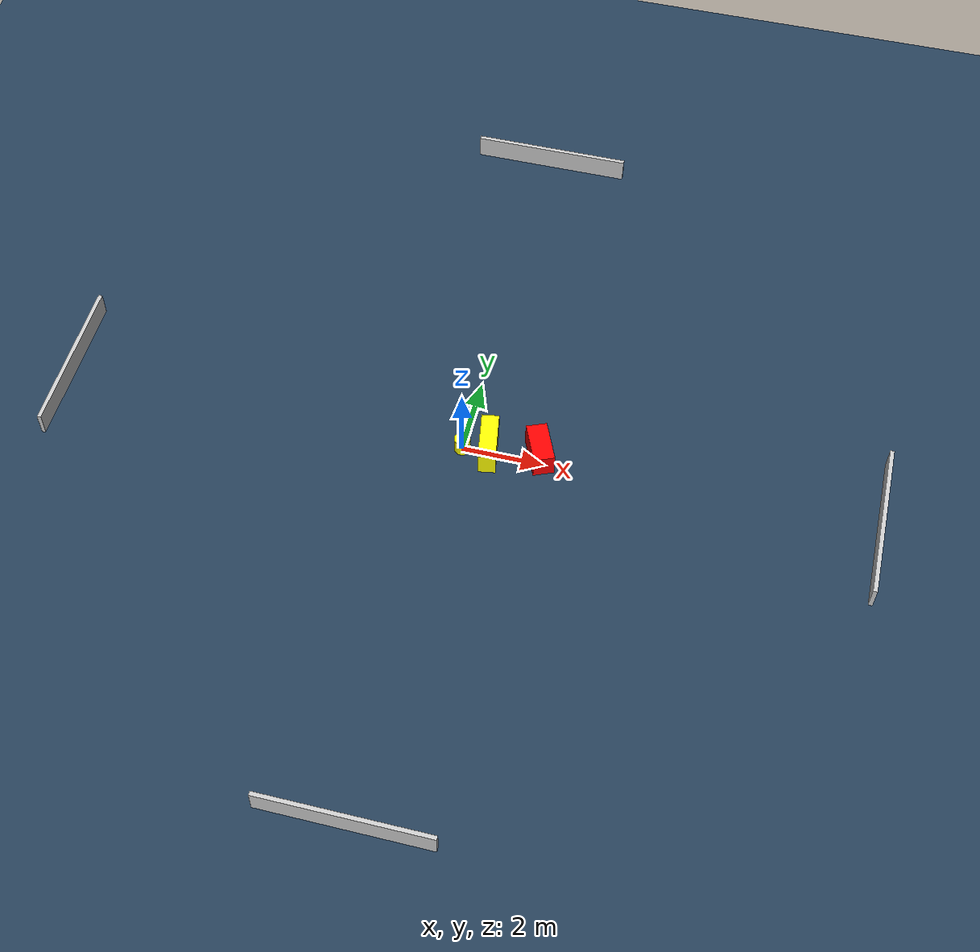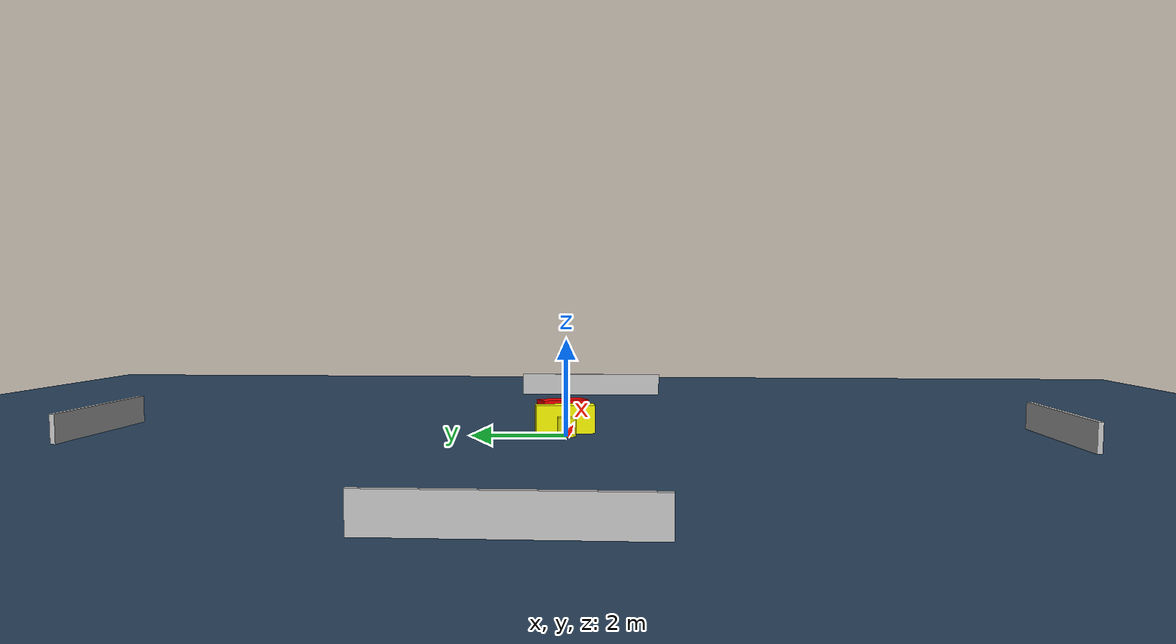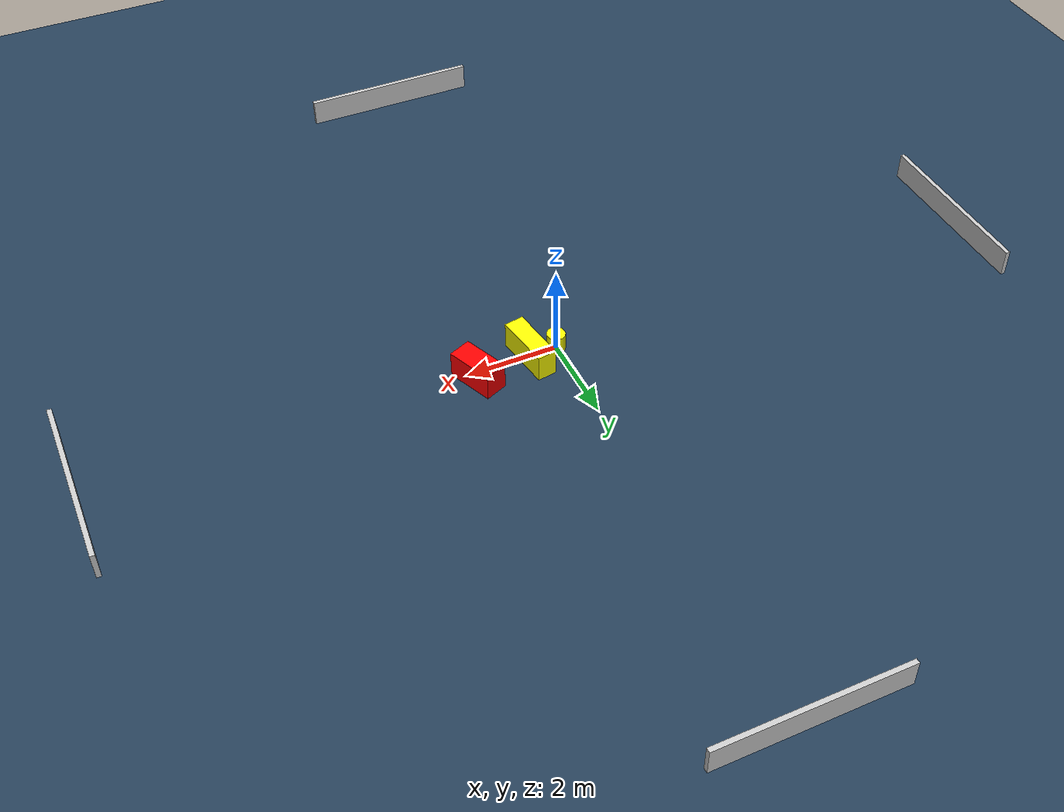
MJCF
<?xml version="1.0" ?>
<mujoco model="generated_environment">
  <option timestep="0.01" integrator="RK4" cone="elliptic"/>
  <default>
    <geom density="1"/>
  </default>
  <asset>
    <texture builtin="gradient" height="3072" name="skybox" rgb1="0.3 0.5 0.7" rgb2="0 0 0" type="skybox" width="512"/>
    <texture builtin="checker" height="300" name="groundplane" rgb1="0.2 0.3 0.4" rgb2="0.1 0.2 0.3" type="2d" width="300"/>
    <material name="groundplane" reflectance="0.2" texrepeat="5 5" texture="groundplane"/>
  </asset>
  <worldbody>
    <light dir="0 0 -1" directional="true" pos="0 0 1.5"/>
    <geom condim="3" friction="0.5 0.005 0.001" material="groundplane" name="floor" pos="0 0 0" size="0 0 0.05" type="plane"/>
    <body name="walls">
      <geom name="wall_1" condim="4" pos="-10.0 0.0 0.3" rgba="0.800000011920929 0.800000011920929 0.800000011920929 1.0" size="0.05 2.0 0.3" type="box"/>
      <geom name="wall_2" condim="4" pos="10.0 0.0 0.3" rgba="0.800000011920929 0.800000011920929 0.800000011920929 1.0" size="0.05 2.0 0.3" type="box"/>
      <geom name="wall_3" condim="4" pos="0.0 -10.0 0.3" rgba="0.800000011920929 0.800000011920929 0.800000011920929 1.0" size="2.0 0.05 0.3" type="box"/>
      <geom name="wall_4" condim="4" pos="0.0 10.0 0.3" rgba="0.800000011920929 0.800000011920929 0.800000011920929 1.0" size="2.0 0.05 0.3" type="box"/>
    </body>
    <body name="robot">
      <joint name="joint_x" type="slide" pos="0 0 0" axis="1 0 0"/>
      <joint name="joint_y" type="slide" pos="0 0 0" axis="0 1 0"/>
      <geom name="robot" type="cylinder" pos="0.0 0.0 0.2" size="0.2 0.2 0.0" mass="5.0" friction="1.0 0.005 0.0001" condim="4" rgba="1.0 1.0 0.0 1.0"/>
    </body>
    <body name="obstacle_1_movable">
      <geom name="obstacle_1_movable" condim="4" pos="0.6227559534210003 0.08318322897758965 0.3" euler="0 0 9.342030673920254" friction="0.0 0.005 0.001" rgba="1.0 1.0 0.0 1.0" size="0.21360223487975677 0.6297616957778954 0.3" type="box" mass="0.1"/>
      <joint type="free"/>
    </body>
    <body name="obstacle_2_static">
      <geom name="obstacle_2_static" condim="4" pos="1.8568536529862556 0.22097995400732173 0.3" euler="0 0 293.0038757616052" friction="0.0 0.005 0.001" rgba="1.0 0.0 0.0 1.0" size="0.5194584921336045 0.2556355400501606 0.3" type="box"/>
    </body>
  </worldbody>
  <actuator>
    <motor name="actuator_x" joint="joint_x" gear="1" ctrlrange="-1 1"/>
    <motor name="actuator_y" joint="joint_y" gear="1" ctrlrange="-1 1"/>
  </actuator>
</mujoco>
